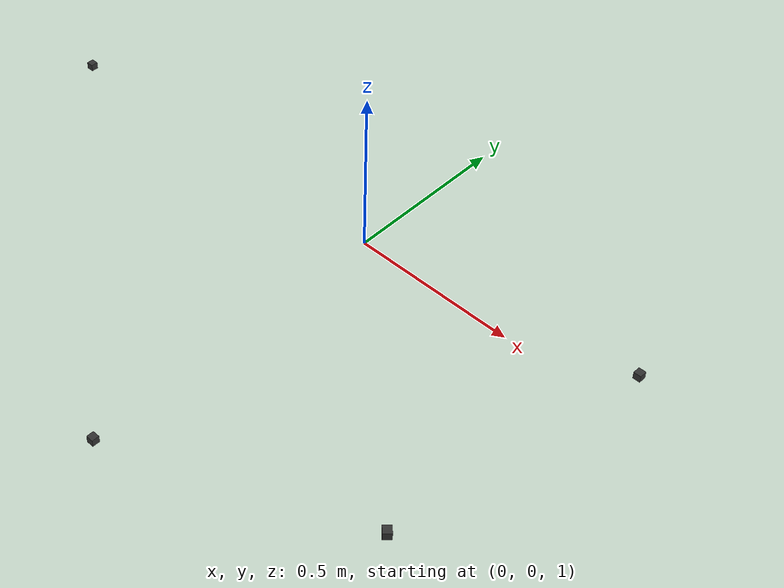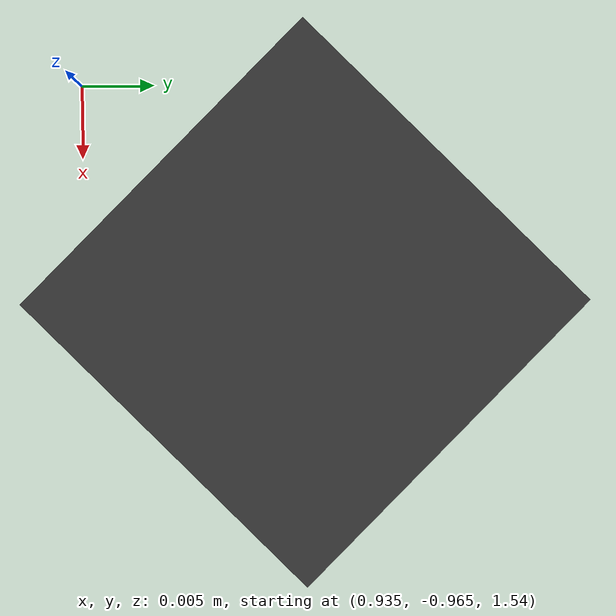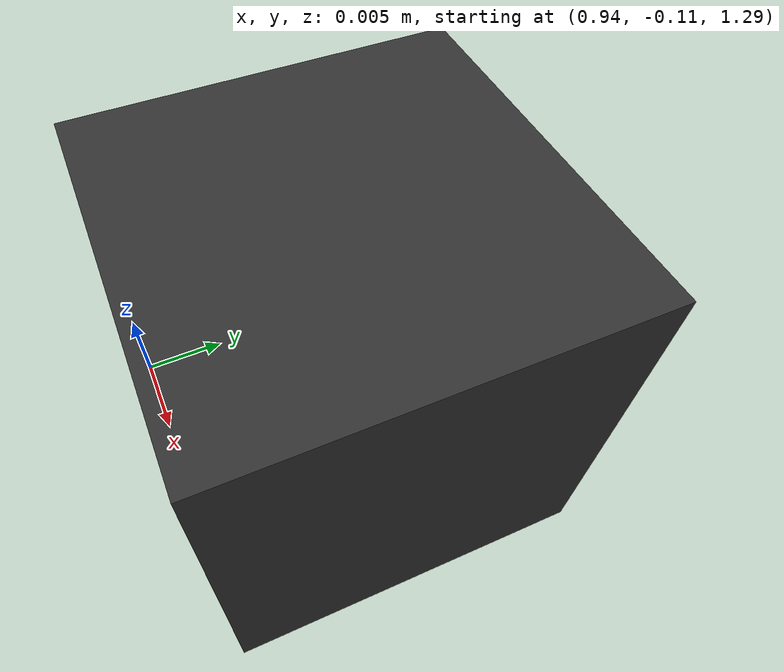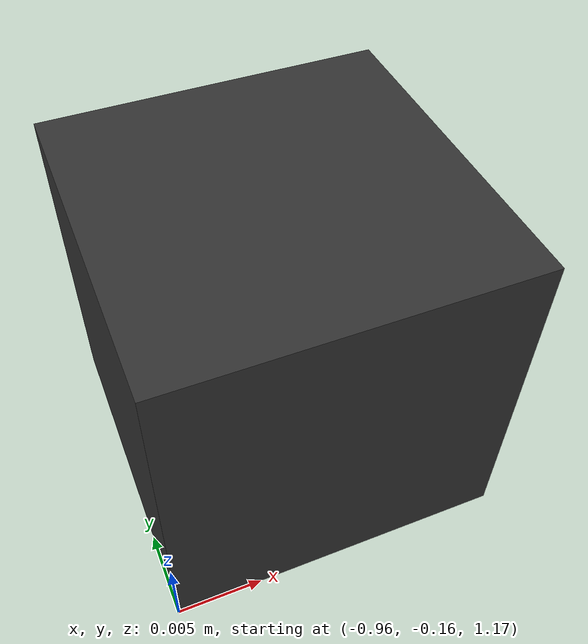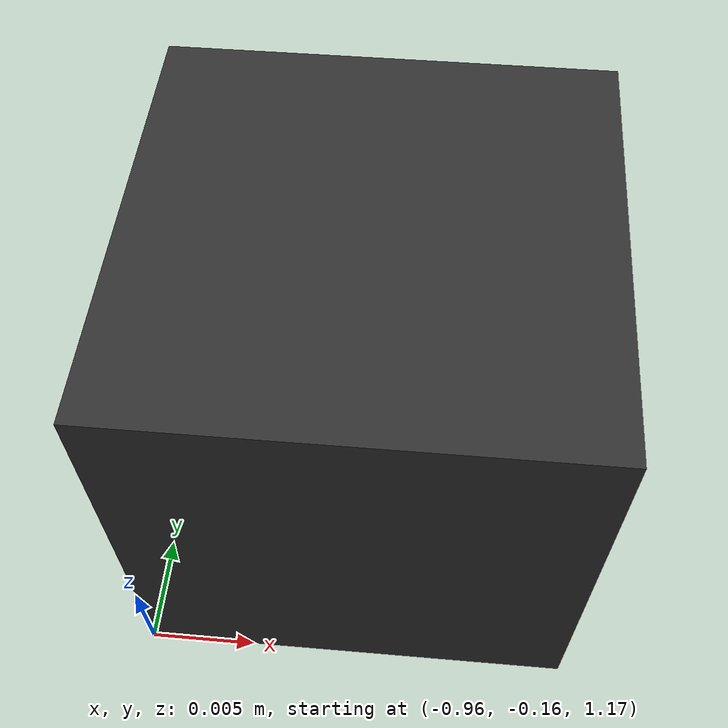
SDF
<sdf version="1.9">
 <world name="aic_world">
  <scene><ambient>0 0 0</ambient><grid>false</grid><background>0.15 0.15 0.15 1</background></scene>
  <physics name="2ms" type="bullet-featherstone">
   <max_step_size>0.002</max_step_size>
   <real_time_factor>1.0</real_time_factor>
  </physics>
  <plugin filename="gz-sim-user-commands-system" name="gz::sim::systems::UserCommands"/>
  <plugin filename="gz-sim-physics-system" name="gz::sim::systems::Physics">
   <engine><filename>gz-physics-bullet-featherstone-plugin</filename></engine>
  </plugin>
  <plugin filename="gz-sim-sensors-system" name="gz::sim::systems::Sensors">
   <render_engine>ogre2</render_engine>
   <global_illumination type="vct">
    <enabled>true</enabled>
    <resolution>256 256 256</resolution>
    <octant_count>1 1 1</octant_count>
    <bounce_count>3</bounce_count>
    <high_quality>false</high_quality>
    <anisotropic>true</anisotropic>
    <thin_wall_counter>1.0</thin_wall_counter>
    <conserve_memory>true</conserve_memory>
    <debug_vis_mode>none</debug_vis_mode>
   </global_illumination>
  </plugin>
  <plugin filename="ScoringPlugin" name="aic_gazebo::ScoringPlugin"/>
  <plugin filename="WorldSdfGeneratorPlugin" name="aic_gazebo::WorldSdfGeneratorPlugin">
   <save_world_delay_s>5.0</save_world_delay_s>
   <force_save_after_s>45.0</force_save_after_s>
   <save_world_path>/tmp/aic.sdf</save_world_path>
  </plugin>
  <plugin filename="gz-sim-contact-system" name="gz::sim::systems::Contact"/>
  <gravity>0 0 -9.8</gravity>
  <light type="spot" name="enclosure_light">
   <pose>0 0 2.5 0 0 0</pose>
   <diffuse>1 1 1 1</diffuse>
   <intensity>0.4</intensity>
   <specular>.1 .1 .1 1</specular>
   <attenuation>
    <range>2</range>
    <constant>1.0</constant>
    <linear>0.01</linear>
    <quadratic>0.001</quadratic>
   </attenuation>
   <spot><inner_angle>0.1</inner_angle><outer_angle>2</outer_angle><falloff>1.0</falloff></spot>
   <visualize>false</visualize>
  </light>
  <light type="point" name="ceiling_01">
   <pose>2 2 6 0 0 0</pose>
   <cast_shadows>false</cast_shadows>
   <diffuse>1 1 1 1</diffuse>
   <intensity>2</intensity>
   <specular>.1 .1 .1 1</specular>
   <attenuation>
    <range>9</range>
    <constant>1.0</constant>
    <linear>0.01</linear>
    <quadratic>0.001</quadratic>
   </attenuation>
   <visualize>false</visualize>
  </light>
  <light type="point" name="ceiling_02">
   <pose>-2 -2 6 0 0 0</pose>
   <cast_shadows>false</cast_shadows>
   <diffuse>1 1 1 1</diffuse>
   <intensity>2</intensity>
   <specular>.1 .1 .1 1</specular>
   <attenuation>
    <range>9</range>
    <constant>1.0</constant>
    <linear>0.01</linear>
    <quadratic>0.001</quadratic>
   </attenuation>
   <visualize>false</visualize>
  </light>
  <model name="overview_camera_rig">
   <static>true</static>
   <pose>0.95 -0.1 1.3 0.0 0.0 3.14</pose>
   <link name="overview_camera_link">
    <inertial>
     <mass>0.001</mass>
     <inertia><ixx>1e-6</ixx><ixy>0</ixy><ixz>0</ixz><iyy>1e-6</iyy><iyz>0</iyz><izz>1e-6</izz></inertia>
    </inertial>
    <visual name="overview_camera_visual">
     <geometry><box><size>0.02 0.02 0.02</size></box></geometry>
     <material><ambient>0.2 0.2 0.2 1</ambient><diffuse>0.2 0.2 0.2 1</diffuse></material>
    </visual>
   </link>
   <link name="overview_camera_sensor_link">
    <inertial>
     <mass>0.001</mass>
     <inertia><ixx>1e-6</ixx><ixy>0</ixy><ixz>0</ixz><iyy>1e-6</iyy><iyz>0</iyz><izz>1e-6</izz></inertia>
    </inertial>
    <sensor name="overview_camera" type="camera">
     <frame_id>overview_camera_sensor_link</frame_id>
     <topic>/overview_camera/image</topic>
     <update_rate>20</update_rate>
     <enable_metrics>false</enable_metrics>
     <camera name="overview_camera">
      <horizontal_fov>0.8718</horizontal_fov>
      <image>
       <width>1152</width>
       <height>1024</height>
       <format>RGB_INT8</format>
       <anti_aliasing>4</anti_aliasing>
      </image>
      <camera_info_topic>/overview_camera/camera_info</camera_info_topic>
      <triggered>false</triggered>
      <clip><near>0.07</near><far>20</far></clip>
      <save enabled="false"><path>__default__</path></save>
      <visibility_mask>4294967295</visibility_mask>
      <noise><type>none</type><mean>0</mean><stddev>0</stddev></noise>
      <distortion><k1>0</k1><k2>0</k2><k3>0</k3><p1>0</p1><p2>0</p2><center>0.5 0.5</center></distortion>
      <lens>
       <type>stereographic</type>
       <scale_to_hfov>true</scale_to_hfov>
       <cutoff_angle>1.5707963267948966</cutoff_angle>
       <env_texture_size>256</env_texture_size>
      </lens>
      <optical_frame_id>overview_camera_optical</optical_frame_id>
     </camera>
    </sensor>
   </link>
   <link name="overview_camera_optical">
    <pose>0 0 0 -1.5708 0 -1.5708</pose>
    <inertial>
     <mass>0.001</mass>
     <inertia><ixx>1e-6</ixx><ixy>0</ixy><ixz>0</ixz><iyy>1e-6</iyy><iyz>0</iyz><izz>1e-6</izz></inertia>
    </inertial>
   </link>
   <joint name="overview_camera_sensor_joint" type="fixed">
    <parent>overview_camera_link</parent>
    <child>overview_camera_sensor_link</child>
   </joint>
   <joint name="overview_camera_optical_joint" type="fixed">
    <parent>overview_camera_sensor_link</parent>
    <child>overview_camera_optical</child>
   </joint>
  </model>
  <model name="overview_front_camera_rig">
   <static>true</static>
   <pose>0.15 -1.05 1.22 1.5708 0.0 1.5708</pose>
   <link name="overview_front_camera_link">
    <inertial>
     <mass>0.001</mass>
     <inertia><ixx>1e-6</ixx><ixy>0</ixy><ixz>0</ixz><iyy>1e-6</iyy><iyz>0</iyz><izz>1e-6</izz></inertia>
    </inertial>
    <visual name="overview_front_camera_visual">
     <geometry><box><size>0.02 0.02 0.02</size></box></geometry>
     <material><ambient>0.2 0.2 0.2 1</ambient><diffuse>0.2 0.2 0.2 1</diffuse></material>
    </visual>
   </link>
   <link name="overview_front_camera_sensor_link">
    <inertial>
     <mass>0.001</mass>
     <inertia><ixx>1e-6</ixx><ixy>0</ixy><ixz>0</ixz><iyy>1e-6</iyy><iyz>0</iyz><izz>1e-6</izz></inertia>
    </inertial>
    <sensor name="overview_front_camera" type="camera">
     <frame_id>overview_front_camera_sensor_link</frame_id>
     <topic>/overview_front_camera/image</topic>
     <update_rate>20</update_rate>
     <enable_metrics>false</enable_metrics>
     <camera name="overview_front_camera">
      <horizontal_fov>0.8718</horizontal_fov>
      <image>
       <width>1152</width>
       <height>1024</height>
       <format>RGB_INT8</format>
       <anti_aliasing>4</anti_aliasing>
      </image>
      <camera_info_topic>/overview_front_camera/camera_info</camera_info_topic>
      <triggered>false</triggered>
      <clip><near>0.07</near><far>20</far></clip>
      <save enabled="false"><path>__default__</path></save>
      <visibility_mask>4294967295</visibility_mask>
      <noise><type>none</type><mean>0</mean><stddev>0</stddev></noise>
      <distortion><k1>0</k1><k2>0</k2><k3>0</k3><p1>0</p1><p2>0</p2><center>0.5 0.5</center></distortion>
      <lens>
       <type>stereographic</type>
       <scale_to_hfov>true</scale_to_hfov>
       <cutoff_angle>1.5707963267948966</cutoff_angle>
       <env_texture_size>256</env_texture_size>
      </lens>
      <optical_frame_id>overview_front_camera_optical</optical_frame_id>
     </camera>
    </sensor>
   </link>
   <link name="overview_front_camera_optical">
    <pose>0 0 0 -1.5708 0 -1.5708</pose>
    <inertial>
     <mass>0.001</mass>
     <inertia><ixx>1e-6</ixx><ixy>0</ixy><ixz>0</ixz><iyy>1e-6</iyy><iyz>0</iyz><izz>1e-6</izz></inertia>
    </inertial>
   </link>
   <joint name="overview_front_camera_sensor_joint" type="fixed">
    <parent>overview_front_camera_link</parent>
    <child>overview_front_camera_sensor_link</child>
   </joint>
   <joint name="overview_front_camera_optical_joint" type="fixed">
    <parent>overview_front_camera_sensor_link</parent>
    <child>overview_front_camera_optical</child>
   </joint>
  </model>
  <model name="overview_side_camera_rig">
   <static>true</static>
   <pose>-0.95 -0.15 1.18 0.0 0.0 0.0</pose>
   <link name="overview_side_camera_link">
    <inertial>
     <mass>0.001</mass>
     <inertia><ixx>1e-6</ixx><ixy>0</ixy><ixz>0</ixz><iyy>1e-6</iyy><iyz>0</iyz><izz>1e-6</izz></inertia>
    </inertial>
    <visual name="overview_side_camera_visual">
     <geometry><box><size>0.02 0.02 0.02</size></box></geometry>
     <material><ambient>0.2 0.2 0.2 1</ambient><diffuse>0.2 0.2 0.2 1</diffuse></material>
    </visual>
   </link>
   <link name="overview_side_camera_sensor_link">
    <inertial>
     <mass>0.001</mass>
     <inertia><ixx>1e-6</ixx><ixy>0</ixy><ixz>0</ixz><iyy>1e-6</iyy><iyz>0</iyz><izz>1e-6</izz></inertia>
    </inertial>
    <sensor name="overview_side_camera" type="camera">
     <frame_id>overview_side_camera_sensor_link</frame_id>
     <topic>/overview_side_camera/image</topic>
     <update_rate>20</update_rate>
     <enable_metrics>false</enable_metrics>
     <camera name="overview_side_camera">
      <horizontal_fov>0.8718</horizontal_fov>
      <image>
       <width>1152</width>
       <height>1024</height>
       <format>RGB_INT8</format>
       <anti_aliasing>4</anti_aliasing>
      </image>
      <camera_info_topic>/overview_side_camera/camera_info</camera_info_topic>
      <triggered>false</triggered>
      <clip><near>0.07</near><far>20</far></clip>
      <save enabled="false"><path>__default__</path></save>
      <visibility_mask>4294967295</visibility_mask>
      <noise><type>none</type><mean>0</mean><stddev>0</stddev></noise>
      <distortion><k1>0</k1><k2>0</k2><k3>0</k3><p1>0</p1><p2>0</p2><center>0.5 0.5</center></distortion>
      <lens>
       <type>stereographic</type>
       <scale_to_hfov>true</scale_to_hfov>
       <cutoff_angle>1.5707963267948966</cutoff_angle>
       <env_texture_size>256</env_texture_size>
      </lens>
      <optical_frame_id>overview_side_camera_optical</optical_frame_id>
     </camera>
    </sensor>
   </link>
   <link name="overview_side_camera_optical">
    <pose>0 0 0 -1.5708 0 -1.5708</pose>
    <inertial>
     <mass>0.001</mass>
     <inertia><ixx>1e-6</ixx><ixy>0</ixy><ixz>0</ixz><iyy>1e-6</iyy><iyz>0</iyz><izz>1e-6</izz></inertia>
    </inertial>
   </link>
   <joint name="overview_side_camera_sensor_joint" type="fixed">
    <parent>overview_side_camera_link</parent>
    <child>overview_side_camera_sensor_link</child>
   </joint>
   <joint name="overview_side_camera_optical_joint" type="fixed">
    <parent>overview_side_camera_sensor_link</parent>
    <child>overview_side_camera_optical</child>
   </joint>
  </model>
  <model name="overview_oblique_camera_rig">
   <static>true</static>
   <pose>0.95 -0.95 1.55 0.0 0.0 2.35</pose>
   <link name="overview_oblique_camera_link">
    <inertial>
     <mass>0.001</mass>
     <inertia><ixx>1e-6</ixx><ixy>0</ixy><ixz>0</ixz><iyy>1e-6</iyy><iyz>0</iyz><izz>1e-6</izz></inertia>
    </inertial>
    <visual name="overview_oblique_camera_visual">
     <geometry><box><size>0.02 0.02 0.02</size></box></geometry>
     <material><ambient>0.2 0.2 0.2 1</ambient><diffuse>0.2 0.2 0.2 1</diffuse></material>
    </visual>
   </link>
   <link name="overview_oblique_camera_sensor_link">
    <inertial>
     <mass>0.001</mass>
     <inertia><ixx>1e-6</ixx><ixy>0</ixy><ixz>0</ixz><iyy>1e-6</iyy><iyz>0</iyz><izz>1e-6</izz></inertia>
    </inertial>
    <sensor name="overview_oblique_camera" type="camera">
     <frame_id>overview_oblique_camera_sensor_link</frame_id>
     <topic>/overview_oblique_camera/image</topic>
     <update_rate>20</update_rate>
     <enable_metrics>false</enable_metrics>
     <camera name="overview_oblique_camera">
      <horizontal_fov>0.8718</horizontal_fov>
      <image>
       <width>1152</width>
       <height>1024</height>
       <format>RGB_INT8</format>
       <anti_aliasing>4</anti_aliasing>
      </image>
      <camera_info_topic>/overview_oblique_camera/camera_info</camera_info_topic>
      <triggered>false</triggered>
      <clip><near>0.07</near><far>20</far></clip>
      <save enabled="false"><path>__default__</path></save>
      <visibility_mask>4294967295</visibility_mask>
      <noise><type>none</type><mean>0</mean><stddev>0</stddev></noise>
      <distortion><k1>0</k1><k2>0</k2><k3>0</k3><p1>0</p1><p2>0</p2><center>0.5 0.5</center></distortion>
      <lens>
       <type>stereographic</type>
       <scale_to_hfov>true</scale_to_hfov>
       <cutoff_angle>1.5707963267948966</cutoff_angle>
       <env_texture_size>256</env_texture_size>
      </lens>
      <optical_frame_id>overview_oblique_camera_optical</optical_frame_id>
     </camera>
    </sensor>
   </link>
   <link name="overview_oblique_camera_optical">
    <pose>0 0 0 -1.5708 0 -1.5708</pose>
    <inertial>
     <mass>0.001</mass>
     <inertia><ixx>1e-6</ixx><ixy>0</ixy><ixz>0</ixz><iyy>1e-6</iyy><iyz>0</iyz><izz>1e-6</izz></inertia>
    </inertial>
   </link>
   <joint name="overview_oblique_camera_sensor_joint" type="fixed">
    <parent>overview_oblique_camera_link</parent>
    <child>overview_oblique_camera_sensor_link</child>
   </joint>
   <joint name="overview_oblique_camera_optical_joint" type="fixed">
    <parent>overview_oblique_camera_sensor_link</parent>
    <child>overview_oblique_camera_optical</child>
   </joint>
  </model>
 </world>
</sdf>
